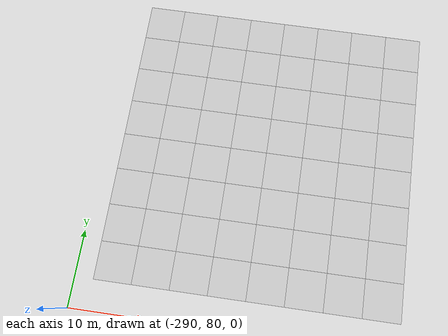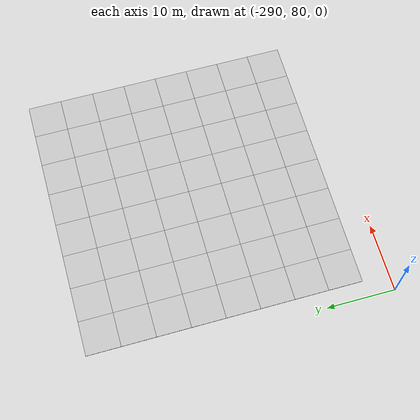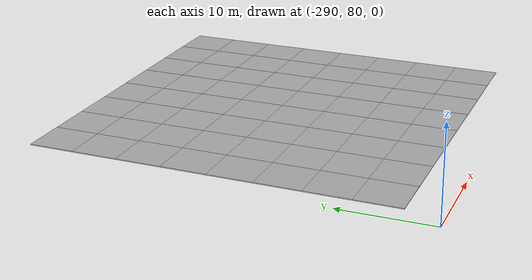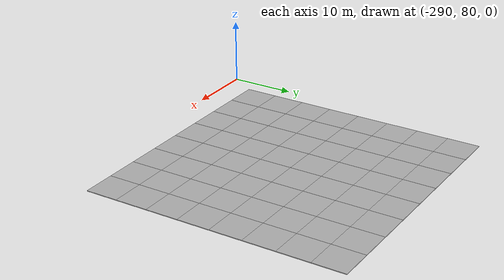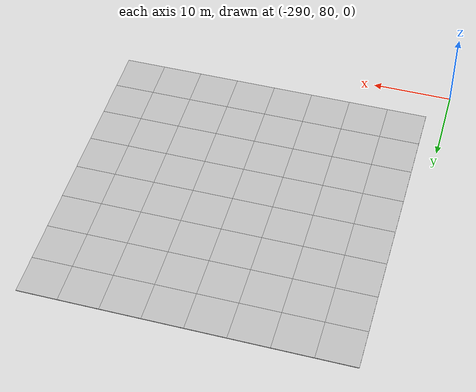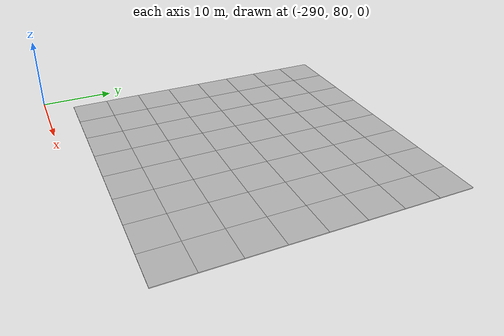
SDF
<sdf version="1.7">
 <world name="default">
  <model name="mud_plane_40x40_21">
   <model name="mud_plane_20x20">
    <model name="mud_plane">
     <static>1</static>
     <link name="link">
      <collision name="collision"><geometry><box><size>10 10 0.1</size></box></geometry></collision>
      <visual name="visual_1">
       <pose>-2.5 2.5 -0.05 0 -0 0</pose>
       <cast_shadows>0</cast_shadows>
       <geometry><box><size>5 5 0.1</size></box></geometry>
       <material>
        <script>
         <uri>model://mud_plane/materials/scripts</uri>
         <uri>model://mud_plane/materials/textures</uri>
         <name>vrc/mud</name>
        </script>
       </material>
      </visual>
      <visual name="visual_2">
       <pose>2.5 2.5 -0.05 0 -0 0</pose>
       <cast_shadows>0</cast_shadows>
       <geometry><box><size>5 5 0.1</size></box></geometry>
       <material>
        <script>
         <uri>model://mud_plane/materials/scripts</uri>
         <uri>model://mud_plane/materials/textures</uri>
         <name>vrc/mud</name>
        </script>
       </material>
      </visual>
      <visual name="visual_3">
       <pose>2.5 -2.5 -0.05 0 -0 0</pose>
       <cast_shadows>0</cast_shadows>
       <geometry><box><size>5 5 0.1</size></box></geometry>
       <material>
        <script>
         <uri>model://mud_plane/materials/scripts</uri>
         <uri>model://mud_plane/materials/textures</uri>
         <name>vrc/mud</name>
        </script>
       </material>
      </visual>
      <visual name="visual_4">
       <pose>-2.5 -2.5 -0.05 0 -0 0</pose>
       <cast_shadows>0</cast_shadows>
       <geometry><box><size>5 5 0.1</size></box></geometry>
       <material>
        <script>
         <uri>model://mud_plane/materials/scripts</uri>
         <uri>model://mud_plane/materials/textures</uri>
         <name>vrc/mud</name>
        </script>
       </material>
      </visual>
     </link>
     <pose>-4.99986 -4.99991 0 0 -0 0</pose>
    </model>
    <model name="mud_plane_0">
     <static>1</static>
     <link name="link">
      <collision name="collision"><geometry><box><size>10 10 0.1</size></box></geometry></collision>
      <visual name="visual_1">
       <pose>-2.5 2.5 -0.05 0 -0 0</pose>
       <cast_shadows>0</cast_shadows>
       <geometry><box><size>5 5 0.1</size></box></geometry>
       <material>
        <script>
         <uri>model://mud_plane/materials/scripts</uri>
         <uri>model://mud_plane/materials/textures</uri>
         <name>vrc/mud</name>
        </script>
       </material>
      </visual>
      <visual name="visual_2">
       <pose>2.5 2.5 -0.05 0 -0 0</pose>
       <cast_shadows>0</cast_shadows>
       <geometry><box><size>5 5 0.1</size></box></geometry>
       <material>
        <script>
         <uri>model://mud_plane/materials/scripts</uri>
         <uri>model://mud_plane/materials/textures</uri>
         <name>vrc/mud</name>
        </script>
       </material>
      </visual>
      <visual name="visual_3">
       <pose>2.5 -2.5 -0.05 0 -0 0</pose>
       <cast_shadows>0</cast_shadows>
       <geometry><box><size>5 5 0.1</size></box></geometry>
       <material>
        <script>
         <uri>model://mud_plane/materials/scripts</uri>
         <uri>model://mud_plane/materials/textures</uri>
         <name>vrc/mud</name>
        </script>
       </material>
      </visual>
      <visual name="visual_4">
       <pose>-2.5 -2.5 -0.05 0 -0 0</pose>
       <cast_shadows>0</cast_shadows>
       <geometry><box><size>5 5 0.1</size></box></geometry>
       <material>
        <script>
         <uri>model://mud_plane/materials/scripts</uri>
         <uri>model://mud_plane/materials/textures</uri>
         <name>vrc/mud</name>
        </script>
       </material>
      </visual>
     </link>
     <pose>-4.99946 4.99954 0 0 -0 0</pose>
    </model>
    <model name="mud_plane_1">
     <static>1</static>
     <link name="link">
      <collision name="collision"><geometry><box><size>10 10 0.1</size></box></geometry></collision>
      <visual name="visual_1">
       <pose>-2.5 2.5 -0.05 0 -0 0</pose>
       <cast_shadows>0</cast_shadows>
       <geometry><box><size>5 5 0.1</size></box></geometry>
       <material>
        <script>
         <uri>model://mud_plane/materials/scripts</uri>
         <uri>model://mud_plane/materials/textures</uri>
         <name>vrc/mud</name>
        </script>
       </material>
      </visual>
      <visual name="visual_2">
       <pose>2.5 2.5 -0.05 0 -0 0</pose>
       <cast_shadows>0</cast_shadows>
       <geometry><box><size>5 5 0.1</size></box></geometry>
       <material>
        <script>
         <uri>model://mud_plane/materials/scripts</uri>
         <uri>model://mud_plane/materials/textures</uri>
         <name>vrc/mud</name>
        </script>
       </material>
      </visual>
      <visual name="visual_3">
       <pose>2.5 -2.5 -0.05 0 -0 0</pose>
       <cast_shadows>0</cast_shadows>
       <geometry><box><size>5 5 0.1</size></box></geometry>
       <material>
        <script>
         <uri>model://mud_plane/materials/scripts</uri>
         <uri>model://mud_plane/materials/textures</uri>
         <name>vrc/mud</name>
        </script>
       </material>
      </visual>
      <visual name="visual_4">
       <pose>-2.5 -2.5 -0.05 0 -0 0</pose>
       <cast_shadows>0</cast_shadows>
       <geometry><box><size>5 5 0.1</size></box></geometry>
       <material>
        <script>
         <uri>model://mud_plane/materials/scripts</uri>
         <uri>model://mud_plane/materials/textures</uri>
         <name>vrc/mud</name>
        </script>
       </material>
      </visual>
     </link>
     <pose>4.99964 -4.99949 0 0 -0 0</pose>
    </model>
    <model name="mud_plane_2">
     <static>1</static>
     <link name="link">
      <collision name="collision"><geometry><box><size>10 10 0.1</size></box></geometry></collision>
      <visual name="visual_1">
       <pose>-2.5 2.5 -0.05 0 -0 0</pose>
       <cast_shadows>0</cast_shadows>
       <geometry><box><size>5 5 0.1</size></box></geometry>
       <material>
        <script>
         <uri>model://mud_plane/materials/scripts</uri>
         <uri>model://mud_plane/materials/textures</uri>
         <name>vrc/mud</name>
        </script>
       </material>
      </visual>
      <visual name="visual_2">
       <pose>2.5 2.5 -0.05 0 -0 0</pose>
       <cast_shadows>0</cast_shadows>
       <geometry><box><size>5 5 0.1</size></box></geometry>
       <material>
        <script>
         <uri>model://mud_plane/materials/scripts</uri>
         <uri>model://mud_plane/materials/textures</uri>
         <name>vrc/mud</name>
        </script>
       </material>
      </visual>
      <visual name="visual_3">
       <pose>2.5 -2.5 -0.05 0 -0 0</pose>
       <cast_shadows>0</cast_shadows>
       <geometry><box><size>5 5 0.1</size></box></geometry>
       <material>
        <script>
         <uri>model://mud_plane/materials/scripts</uri>
         <uri>model://mud_plane/materials/textures</uri>
         <name>vrc/mud</name>
        </script>
       </material>
      </visual>
      <visual name="visual_4">
       <pose>-2.5 -2.5 -0.05 0 -0 0</pose>
       <cast_shadows>0</cast_shadows>
       <geometry><box><size>5 5 0.1</size></box></geometry>
       <material>
        <script>
         <uri>model://mud_plane/materials/scripts</uri>
         <uri>model://mud_plane/materials/textures</uri>
         <name>vrc/mud</name>
        </script>
       </material>
      </visual>
     </link>
     <pose>4.99967 4.99986 0 0 -0 0</pose>
    </model>
    <static>0</static>
    <pose>-9.99895 9.99843 0 0 -0 0</pose>
   </model>
   <model name="mud_plane_20x20_0">
    <model name="mud_plane">
     <static>1</static>
     <link name="link">
      <collision name="collision"><geometry><box><size>10 10 0.1</size></box></geometry></collision>
      <visual name="visual_1">
       <pose>-2.5 2.5 -0.05 0 -0 0</pose>
       <cast_shadows>0</cast_shadows>
       <geometry><box><size>5 5 0.1</size></box></geometry>
       <material>
        <script>
         <uri>model://mud_plane/materials/scripts</uri>
         <uri>model://mud_plane/materials/textures</uri>
         <name>vrc/mud</name>
        </script>
       </material>
      </visual>
      <visual name="visual_2">
       <pose>2.5 2.5 -0.05 0 -0 0</pose>
       <cast_shadows>0</cast_shadows>
       <geometry><box><size>5 5 0.1</size></box></geometry>
       <material>
        <script>
         <uri>model://mud_plane/materials/scripts</uri>
         <uri>model://mud_plane/materials/textures</uri>
         <name>vrc/mud</name>
        </script>
       </material>
      </visual>
      <visual name="visual_3">
       <pose>2.5 -2.5 -0.05 0 -0 0</pose>
       <cast_shadows>0</cast_shadows>
       <geometry><box><size>5 5 0.1</size></box></geometry>
       <material>
        <script>
         <uri>model://mud_plane/materials/scripts</uri>
         <uri>model://mud_plane/materials/textures</uri>
         <name>vrc/mud</name>
        </script>
       </material>
      </visual>
      <visual name="visual_4">
       <pose>-2.5 -2.5 -0.05 0 -0 0</pose>
       <cast_shadows>0</cast_shadows>
       <geometry><box><size>5 5 0.1</size></box></geometry>
       <material>
        <script>
         <uri>model://mud_plane/materials/scripts</uri>
         <uri>model://mud_plane/materials/textures</uri>
         <name>vrc/mud</name>
        </script>
       </material>
      </visual>
     </link>
     <pose>-4.99986 -4.99991 0 0 -0 0</pose>
    </model>
    <model name="mud_plane_0">
     <static>1</static>
     <link name="link">
      <collision name="collision"><geometry><box><size>10 10 0.1</size></box></geometry></collision>
      <visual name="visual_1">
       <pose>-2.5 2.5 -0.05 0 -0 0</pose>
       <cast_shadows>0</cast_shadows>
       <geometry><box><size>5 5 0.1</size></box></geometry>
       <material>
        <script>
         <uri>model://mud_plane/materials/scripts</uri>
         <uri>model://mud_plane/materials/textures</uri>
         <name>vrc/mud</name>
        </script>
       </material>
      </visual>
      <visual name="visual_2">
       <pose>2.5 2.5 -0.05 0 -0 0</pose>
       <cast_shadows>0</cast_shadows>
       <geometry><box><size>5 5 0.1</size></box></geometry>
       <material>
        <script>
         <uri>model://mud_plane/materials/scripts</uri>
         <uri>model://mud_plane/materials/textures</uri>
         <name>vrc/mud</name>
        </script>
       </material>
      </visual>
      <visual name="visual_3">
       <pose>2.5 -2.5 -0.05 0 -0 0</pose>
       <cast_shadows>0</cast_shadows>
       <geometry><box><size>5 5 0.1</size></box></geometry>
       <material>
        <script>
         <uri>model://mud_plane/materials/scripts</uri>
         <uri>model://mud_plane/materials/textures</uri>
         <name>vrc/mud</name>
        </script>
       </material>
      </visual>
      <visual name="visual_4">
       <pose>-2.5 -2.5 -0.05 0 -0 0</pose>
       <cast_shadows>0</cast_shadows>
       <geometry><box><size>5 5 0.1</size></box></geometry>
       <material>
        <script>
         <uri>model://mud_plane/materials/scripts</uri>
         <uri>model://mud_plane/materials/textures</uri>
         <name>vrc/mud</name>
        </script>
       </material>
      </visual>
     </link>
     <pose>-4.99946 4.99954 0 0 -0 0</pose>
    </model>
    <model name="mud_plane_1">
     <static>1</static>
     <link name="link">
      <collision name="collision"><geometry><box><size>10 10 0.1</size></box></geometry></collision>
      <visual name="visual_1">
       <pose>-2.5 2.5 -0.05 0 -0 0</pose>
       <cast_shadows>0</cast_shadows>
       <geometry><box><size>5 5 0.1</size></box></geometry>
       <material>
        <script>
         <uri>model://mud_plane/materials/scripts</uri>
         <uri>model://mud_plane/materials/textures</uri>
         <name>vrc/mud</name>
        </script>
       </material>
      </visual>
      <visual name="visual_2">
       <pose>2.5 2.5 -0.05 0 -0 0</pose>
       <cast_shadows>0</cast_shadows>
       <geometry><box><size>5 5 0.1</size></box></geometry>
       <material>
        <script>
         <uri>model://mud_plane/materials/scripts</uri>
         <uri>model://mud_plane/materials/textures</uri>
         <name>vrc/mud</name>
        </script>
       </material>
      </visual>
      <visual name="visual_3">
       <pose>2.5 -2.5 -0.05 0 -0 0</pose>
       <cast_shadows>0</cast_shadows>
       <geometry><box><size>5 5 0.1</size></box></geometry>
       <material>
        <script>
         <uri>model://mud_plane/materials/scripts</uri>
         <uri>model://mud_plane/materials/textures</uri>
         <name>vrc/mud</name>
        </script>
       </material>
      </visual>
      <visual name="visual_4">
       <pose>-2.5 -2.5 -0.05 0 -0 0</pose>
       <cast_shadows>0</cast_shadows>
       <geometry><box><size>5 5 0.1</size></box></geometry>
       <material>
        <script>
         <uri>model://mud_plane/materials/scripts</uri>
         <uri>model://mud_plane/materials/textures</uri>
         <name>vrc/mud</name>
        </script>
       </material>
      </visual>
     </link>
     <pose>4.99964 -4.99949 0 0 -0 0</pose>
    </model>
    <model name="mud_plane_2">
     <static>1</static>
     <link name="link">
      <collision name="collision"><geometry><box><size>10 10 0.1</size></box></geometry></collision>
      <visual name="visual_1">
       <pose>-2.5 2.5 -0.05 0 -0 0</pose>
       <cast_shadows>0</cast_shadows>
       <geometry><box><size>5 5 0.1</size></box></geometry>
       <material>
        <script>
         <uri>model://mud_plane/materials/scripts</uri>
         <uri>model://mud_plane/materials/textures</uri>
         <name>vrc/mud</name>
        </script>
       </material>
      </visual>
      <visual name="visual_2">
       <pose>2.5 2.5 -0.05 0 -0 0</pose>
       <cast_shadows>0</cast_shadows>
       <geometry><box><size>5 5 0.1</size></box></geometry>
       <material>
        <script>
         <uri>model://mud_plane/materials/scripts</uri>
         <uri>model://mud_plane/materials/textures</uri>
         <name>vrc/mud</name>
        </script>
       </material>
      </visual>
      <visual name="visual_3">
       <pose>2.5 -2.5 -0.05 0 -0 0</pose>
       <cast_shadows>0</cast_shadows>
       <geometry><box><size>5 5 0.1</size></box></geometry>
       <material>
        <script>
         <uri>model://mud_plane/materials/scripts</uri>
         <uri>model://mud_plane/materials/textures</uri>
         <name>vrc/mud</name>
        </script>
       </material>
      </visual>
      <visual name="visual_4">
       <pose>-2.5 -2.5 -0.05 0 -0 0</pose>
       <cast_shadows>0</cast_shadows>
       <geometry><box><size>5 5 0.1</size></box></geometry>
       <material>
        <script>
         <uri>model://mud_plane/materials/scripts</uri>
         <uri>model://mud_plane/materials/textures</uri>
         <name>vrc/mud</name>
        </script>
       </material>
      </visual>
     </link>
     <pose>4.99967 4.99986 0 0 -0 0</pose>
    </model>
    <static>0</static>
    <pose>9.99933 9.9997 0 0 -0 0</pose>
   </model>
   <model name="mud_plane_20x20_1">
    <model name="mud_plane">
     <static>1</static>
     <link name="link">
      <collision name="collision"><geometry><box><size>10 10 0.1</size></box></geometry></collision>
      <visual name="visual_1">
       <pose>-2.5 2.5 -0.05 0 -0 0</pose>
       <cast_shadows>0</cast_shadows>
       <geometry><box><size>5 5 0.1</size></box></geometry>
       <material>
        <script>
         <uri>model://mud_plane/materials/scripts</uri>
         <uri>model://mud_plane/materials/textures</uri>
         <name>vrc/mud</name>
        </script>
       </material>
      </visual>
      <visual name="visual_2">
       <pose>2.5 2.5 -0.05 0 -0 0</pose>
       <cast_shadows>0</cast_shadows>
       <geometry><box><size>5 5 0.1</size></box></geometry>
       <material>
        <script>
         <uri>model://mud_plane/materials/scripts</uri>
         <uri>model://mud_plane/materials/textures</uri>
         <name>vrc/mud</name>
        </script>
       </material>
      </visual>
      <visual name="visual_3">
       <pose>2.5 -2.5 -0.05 0 -0 0</pose>
       <cast_shadows>0</cast_shadows>
       <geometry><box><size>5 5 0.1</size></box></geometry>
       <material>
        <script>
         <uri>model://mud_plane/materials/scripts</uri>
         <uri>model://mud_plane/materials/textures</uri>
         <name>vrc/mud</name>
        </script>
       </material>
      </visual>
      <visual name="visual_4">
       <pose>-2.5 -2.5 -0.05 0 -0 0</pose>
       <cast_shadows>0</cast_shadows>
       <geometry><box><size>5 5 0.1</size></box></geometry>
       <material>
        <script>
         <uri>model://mud_plane/materials/scripts</uri>
         <uri>model://mud_plane/materials/textures</uri>
         <name>vrc/mud</name>
        </script>
       </material>
      </visual>
     </link>
     <pose>-4.99986 -4.99991 0 0 -0 0</pose>
    </model>
    <model name="mud_plane_0">
     <static>1</static>
     <link name="link">
      <collision name="collision"><geometry><box><size>10 10 0.1</size></box></geometry></collision>
      <visual name="visual_1">
       <pose>-2.5 2.5 -0.05 0 -0 0</pose>
       <cast_shadows>0</cast_shadows>
       <geometry><box><size>5 5 0.1</size></box></geometry>
       <material>
        <script>
         <uri>model://mud_plane/materials/scripts</uri>
         <uri>model://mud_plane/materials/textures</uri>
         <name>vrc/mud</name>
        </script>
       </material>
      </visual>
      <visual name="visual_2">
       <pose>2.5 2.5 -0.05 0 -0 0</pose>
       <cast_shadows>0</cast_shadows>
       <geometry><box><size>5 5 0.1</size></box></geometry>
       <material>
        <script>
         <uri>model://mud_plane/materials/scripts</uri>
         <uri>model://mud_plane/materials/textures</uri>
         <name>vrc/mud</name>
        </script>
       </material>
      </visual>
      <visual name="visual_3">
       <pose>2.5 -2.5 -0.05 0 -0 0</pose>
       <cast_shadows>0</cast_shadows>
       <geometry><box><size>5 5 0.1</size></box></geometry>
       <material>
        <script>
         <uri>model://mud_plane/materials/scripts</uri>
         <uri>model://mud_plane/materials/textures</uri>
         <name>vrc/mud</name>
        </script>
       </material>
      </visual>
      <visual name="visual_4">
       <pose>-2.5 -2.5 -0.05 0 -0 0</pose>
       <cast_shadows>0</cast_shadows>
       <geometry><box><size>5 5 0.1</size></box></geometry>
       <material>
        <script>
         <uri>model://mud_plane/materials/scripts</uri>
         <uri>model://mud_plane/materials/textures</uri>
         <name>vrc/mud</name>
        </script>
       </material>
      </visual>
     </link>
     <pose>-4.99946 4.99954 0 0 -0 0</pose>
    </model>
    <model name="mud_plane_1">
     <static>1</static>
     <link name="link">
      <collision name="collision"><geometry><box><size>10 10 0.1</size></box></geometry></collision>
      <visual name="visual_1">
       <pose>-2.5 2.5 -0.05 0 -0 0</pose>
       <cast_shadows>0</cast_shadows>
       <geometry><box><size>5 5 0.1</size></box></geometry>
       <material>
        <script>
         <uri>model://mud_plane/materials/scripts</uri>
         <uri>model://mud_plane/materials/textures</uri>
         <name>vrc/mud</name>
        </script>
       </material>
      </visual>
      <visual name="visual_2">
       <pose>2.5 2.5 -0.05 0 -0 0</pose>
       <cast_shadows>0</cast_shadows>
       <geometry><box><size>5 5 0.1</size></box></geometry>
       <material>
        <script>
         <uri>model://mud_plane/materials/scripts</uri>
         <uri>model://mud_plane/materials/textures</uri>
         <name>vrc/mud</name>
        </script>
       </material>
      </visual>
      <visual name="visual_3">
       <pose>2.5 -2.5 -0.05 0 -0 0</pose>
       <cast_shadows>0</cast_shadows>
       <geometry><box><size>5 5 0.1</size></box></geometry>
       <material>
        <script>
         <uri>model://mud_plane/materials/scripts</uri>
         <uri>model://mud_plane/materials/textures</uri>
         <name>vrc/mud</name>
        </script>
       </material>
      </visual>
      <visual name="visual_4">
       <pose>-2.5 -2.5 -0.05 0 -0 0</pose>
       <cast_shadows>0</cast_shadows>
       <geometry><box><size>5 5 0.1</size></box></geometry>
       <material>
        <script>
         <uri>model://mud_plane/materials/scripts</uri>
         <uri>model://mud_plane/materials/textures</uri>
         <name>vrc/mud</name>
        </script>
       </material>
      </visual>
     </link>
     <pose>4.99964 -4.99949 0 0 -0 0</pose>
    </model>
    <model name="mud_plane_2">
     <static>1</static>
     <link name="link">
      <collision name="collision"><geometry><box><size>10 10 0.1</size></box></geometry></collision>
      <visual name="visual_1">
       <pose>-2.5 2.5 -0.05 0 -0 0</pose>
       <cast_shadows>0</cast_shadows>
       <geometry><box><size>5 5 0.1</size></box></geometry>
       <material>
        <script>
         <uri>model://mud_plane/materials/scripts</uri>
         <uri>model://mud_plane/materials/textures</uri>
         <name>vrc/mud</name>
        </script>
       </material>
      </visual>
      <visual name="visual_2">
       <pose>2.5 2.5 -0.05 0 -0 0</pose>
       <cast_shadows>0</cast_shadows>
       <geometry><box><size>5 5 0.1</size></box></geometry>
       <material>
        <script>
         <uri>model://mud_plane/materials/scripts</uri>
         <uri>model://mud_plane/materials/textures</uri>
         <name>vrc/mud</name>
        </script>
       </material>
      </visual>
      <visual name="visual_3">
       <pose>2.5 -2.5 -0.05 0 -0 0</pose>
       <cast_shadows>0</cast_shadows>
       <geometry><box><size>5 5 0.1</size></box></geometry>
       <material>
        <script>
         <uri>model://mud_plane/materials/scripts</uri>
         <uri>model://mud_plane/materials/textures</uri>
         <name>vrc/mud</name>
        </script>
       </material>
      </visual>
      <visual name="visual_4">
       <pose>-2.5 -2.5 -0.05 0 -0 0</pose>
       <cast_shadows>0</cast_shadows>
       <geometry><box><size>5 5 0.1</size></box></geometry>
       <material>
        <script>
         <uri>model://mud_plane/materials/scripts</uri>
         <uri>model://mud_plane/materials/textures</uri>
         <name>vrc/mud</name>
        </script>
       </material>
      </visual>
     </link>
     <pose>4.99967 4.99986 0 0 -0 0</pose>
    </model>
    <static>0</static>
    <pose>9.9993 -9.99877 0 0 -0 0</pose>
   </model>
   <model name="mud_plane_20x20_2">
    <model name="mud_plane">
     <static>1</static>
     <link name="link">
      <collision name="collision"><geometry><box><size>10 10 0.1</size></box></geometry></collision>
      <visual name="visual_1">
       <pose>-2.5 2.5 -0.05 0 -0 0</pose>
       <cast_shadows>0</cast_shadows>
       <geometry><box><size>5 5 0.1</size></box></geometry>
       <material>
        <script>
         <uri>model://mud_plane/materials/scripts</uri>
         <uri>model://mud_plane/materials/textures</uri>
         <name>vrc/mud</name>
        </script>
       </material>
      </visual>
      <visual name="visual_2">
       <pose>2.5 2.5 -0.05 0 -0 0</pose>
       <cast_shadows>0</cast_shadows>
       <geometry><box><size>5 5 0.1</size></box></geometry>
       <material>
        <script>
         <uri>model://mud_plane/materials/scripts</uri>
         <uri>model://mud_plane/materials/textures</uri>
         <name>vrc/mud</name>
        </script>
       </material>
      </visual>
      <visual name="visual_3">
       <pose>2.5 -2.5 -0.05 0 -0 0</pose>
       <cast_shadows>0</cast_shadows>
       <geometry><box><size>5 5 0.1</size></box></geometry>
       <material>
        <script>
         <uri>model://mud_plane/materials/scripts</uri>
         <uri>model://mud_plane/materials/textures</uri>
         <name>vrc/mud</name>
        </script>
       </material>
      </visual>
      <visual name="visual_4">
       <pose>-2.5 -2.5 -0.05 0 -0 0</pose>
       <cast_shadows>0</cast_shadows>
       <geometry><box><size>5 5 0.1</size></box></geometry>
       <material>
        <script>
         <uri>model://mud_plane/materials/scripts</uri>
         <uri>model://mud_plane/materials/textures</uri>
         <name>vrc/mud</name>
        </script>
       </material>
      </visual>
     </link>
     <pose>-4.99986 -4.99991 0 0 -0 0</pose>
    </model>
    <model name="mud_plane_0">
     <static>1</static>
     <link name="link">
      <collision name="collision"><geometry><box><size>10 10 0.1</size></box></geometry></collision>
      <visual name="visual_1">
       <pose>-2.5 2.5 -0.05 0 -0 0</pose>
       <cast_shadows>0</cast_shadows>
       <geometry><box><size>5 5 0.1</size></box></geometry>
       <material>
        <script>
         <uri>model://mud_plane/materials/scripts</uri>
         <uri>model://mud_plane/materials/textures</uri>
         <name>vrc/mud</name>
        </script>
       </material>
      </visual>
      <visual name="visual_2">
       <pose>2.5 2.5 -0.05 0 -0 0</pose>
       <cast_shadows>0</cast_shadows>
       <geometry><box><size>5 5 0.1</size></box></geometry>
       <material>
        <script>
         <uri>model://mud_plane/materials/scripts</uri>
         <uri>model://mud_plane/materials/textures</uri>
         <name>vrc/mud</name>
        </script>
       </material>
      </visual>
      <visual name="visual_3">
       <pose>2.5 -2.5 -0.05 0 -0 0</pose>
       <cast_shadows>0</cast_shadows>
       <geometry><box><size>5 5 0.1</size></box></geometry>
       <material>
        <script>
         <uri>model://mud_plane/materials/scripts</uri>
         <uri>model://mud_plane/materials/textures</uri>
         <name>vrc/mud</name>
        </script>
       </material>
      </visual>
      <visual name="visual_4">
       <pose>-2.5 -2.5 -0.05 0 -0 0</pose>
       <cast_shadows>0</cast_shadows>
       <geometry><box><size>5 5 0.1</size></box></geometry>
       <material>
        <script>
         <uri>model://mud_plane/materials/scripts</uri>
         <uri>model://mud_plane/materials/textures</uri>
         <name>vrc/mud</name>
        </script>
       </material>
      </visual>
     </link>
     <pose>-4.99946 4.99954 0 0 -0 0</pose>
    </model>
    <model name="mud_plane_1">
     <static>1</static>
     <link name="link">
      <collision name="collision"><geometry><box><size>10 10 0.1</size></box></geometry></collision>
      <visual name="visual_1">
       <pose>-2.5 2.5 -0.05 0 -0 0</pose>
       <cast_shadows>0</cast_shadows>
       <geometry><box><size>5 5 0.1</size></box></geometry>
       <material>
        <script>
         <uri>model://mud_plane/materials/scripts</uri>
         <uri>model://mud_plane/materials/textures</uri>
         <name>vrc/mud</name>
        </script>
       </material>
      </visual>
      <visual name="visual_2">
       <pose>2.5 2.5 -0.05 0 -0 0</pose>
       <cast_shadows>0</cast_shadows>
       <geometry><box><size>5 5 0.1</size></box></geometry>
       <material>
        <script>
         <uri>model://mud_plane/materials/scripts</uri>
         <uri>model://mud_plane/materials/textures</uri>
         <name>vrc/mud</name>
        </script>
       </material>
      </visual>
      <visual name="visual_3">
       <pose>2.5 -2.5 -0.05 0 -0 0</pose>
       <cast_shadows>0</cast_shadows>
       <geometry><box><size>5 5 0.1</size></box></geometry>
       <material>
        <script>
         <uri>model://mud_plane/materials/scripts</uri>
         <uri>model://mud_plane/materials/textures</uri>
         <name>vrc/mud</name>
        </script>
       </material>
      </visual>
      <visual name="visual_4">
       <pose>-2.5 -2.5 -0.05 0 -0 0</pose>
       <cast_shadows>0</cast_shadows>
       <geometry><box><size>5 5 0.1</size></box></geometry>
       <material>
        <script>
         <uri>model://mud_plane/materials/scripts</uri>
         <uri>model://mud_plane/materials/textures</uri>
         <name>vrc/mud</name>
        </script>
       </material>
      </visual>
     </link>
     <pose>4.99964 -4.99949 0 0 -0 0</pose>
    </model>
    <model name="mud_plane_2">
     <static>1</static>
     <link name="link">
      <collision name="collision"><geometry><box><size>10 10 0.1</size></box></geometry></collision>
      <visual name="visual_1">
       <pose>-2.5 2.5 -0.05 0 -0 0</pose>
       <cast_shadows>0</cast_shadows>
       <geometry><box><size>5 5 0.1</size></box></geometry>
       <material>
        <script>
         <uri>model://mud_plane/materials/scripts</uri>
         <uri>model://mud_plane/materials/textures</uri>
         <name>vrc/mud</name>
        </script>
       </material>
      </visual>
      <visual name="visual_2">
       <pose>2.5 2.5 -0.05 0 -0 0</pose>
       <cast_shadows>0</cast_shadows>
       <geometry><box><size>5 5 0.1</size></box></geometry>
       <material>
        <script>
         <uri>model://mud_plane/materials/scripts</uri>
         <uri>model://mud_plane/materials/textures</uri>
         <name>vrc/mud</name>
        </script>
       </material>
      </visual>
      <visual name="visual_3">
       <pose>2.5 -2.5 -0.05 0 -0 0</pose>
       <cast_shadows>0</cast_shadows>
       <geometry><box><size>5 5 0.1</size></box></geometry>
       <material>
        <script>
         <uri>model://mud_plane/materials/scripts</uri>
         <uri>model://mud_plane/materials/textures</uri>
         <name>vrc/mud</name>
        </script>
       </material>
      </visual>
      <visual name="visual_4">
       <pose>-2.5 -2.5 -0.05 0 -0 0</pose>
       <cast_shadows>0</cast_shadows>
       <geometry><box><size>5 5 0.1</size></box></geometry>
       <material>
        <script>
         <uri>model://mud_plane/materials/scripts</uri>
         <uri>model://mud_plane/materials/textures</uri>
         <name>vrc/mud</name>
        </script>
       </material>
      </visual>
     </link>
     <pose>4.99967 4.99986 0 0 -0 0</pose>
    </model>
    <static>0</static>
    <pose>-9.99969 -9.99935 0 0 -0 0</pose>
   </model>
   <static>0</static>
   <pose>-267.556 103.966 0 0 -0 0</pose>
  </model>
 </world>
</sdf>
